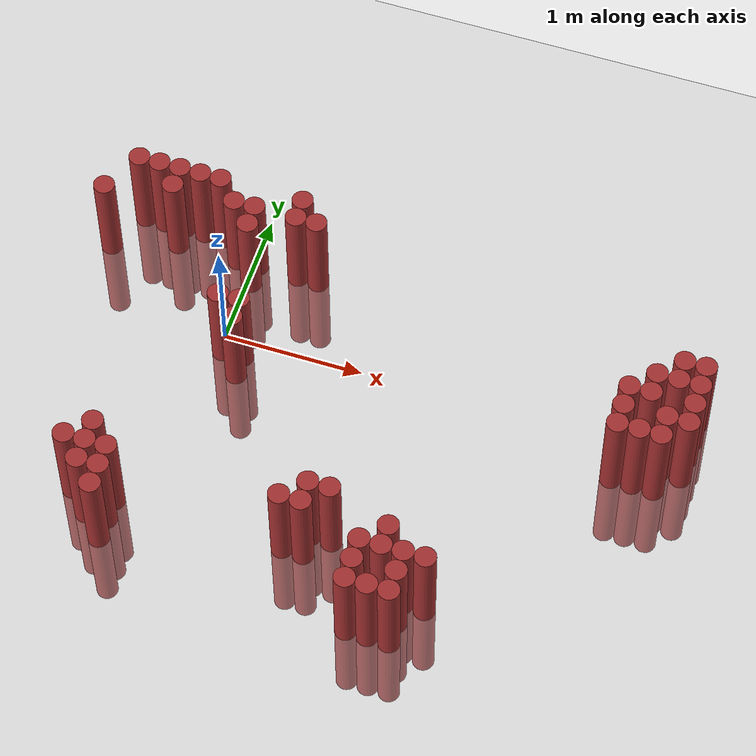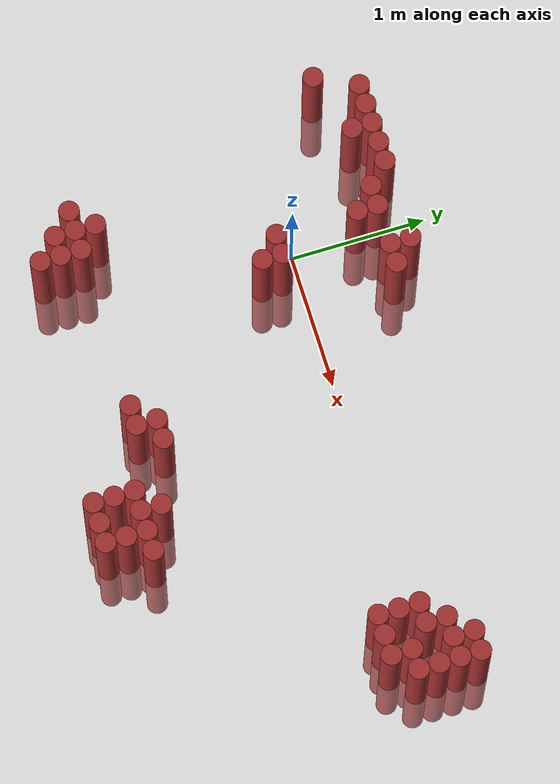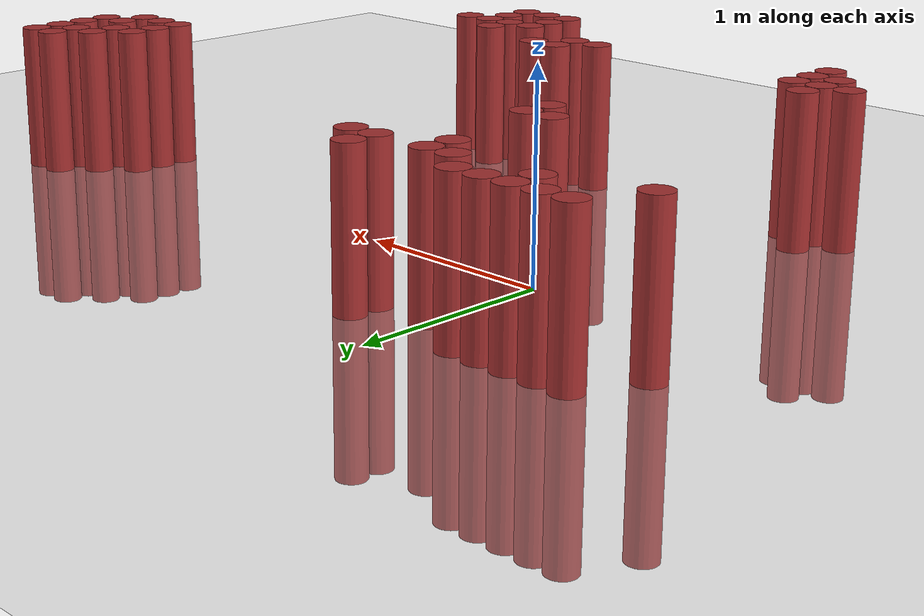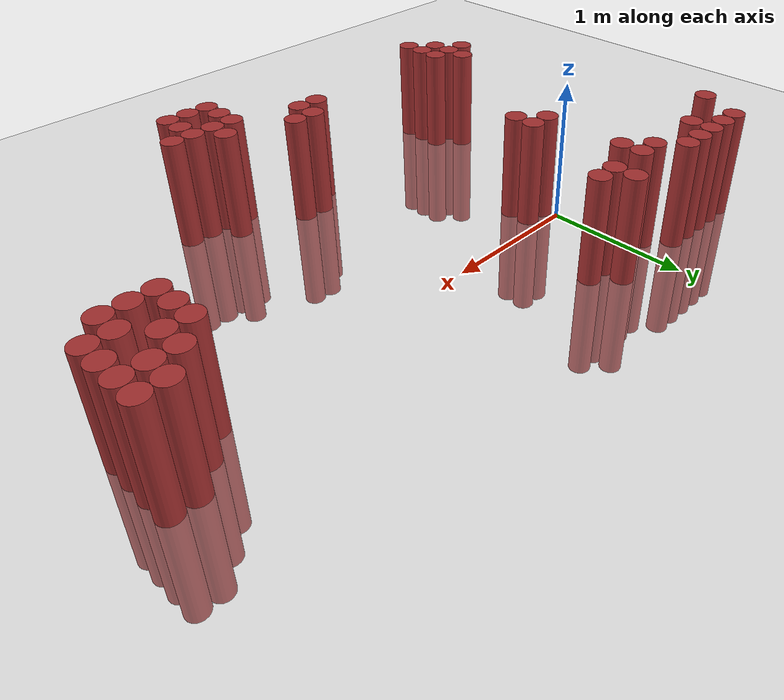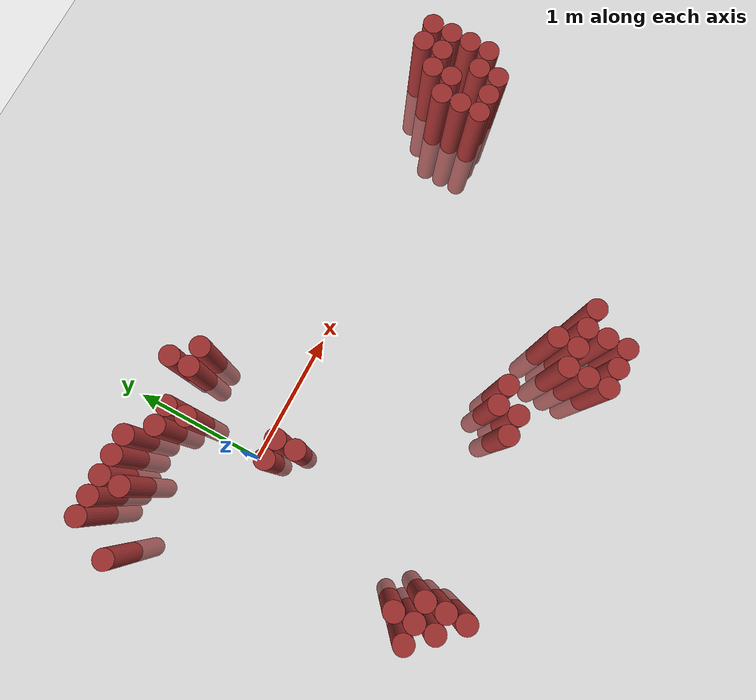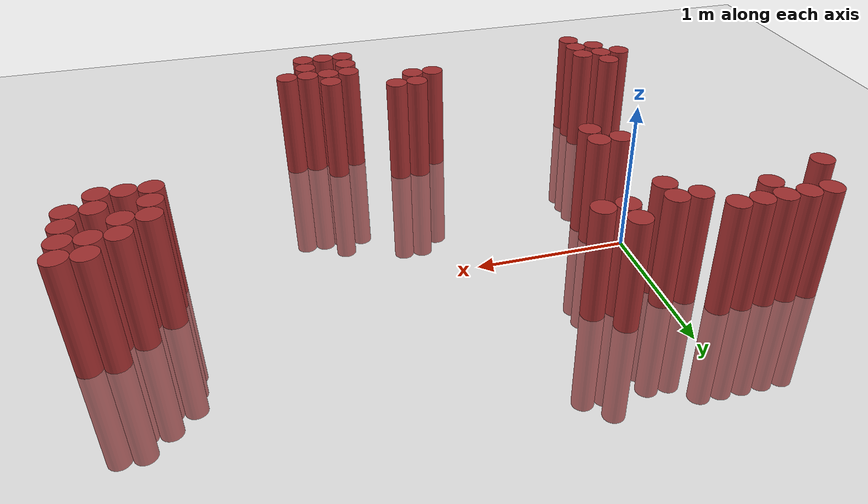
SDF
<sdf version="1.6">
 <world name="default">
  <model name="ground_plane">
   <static>1</static>
   <link name="link">
    <collision name="collision">
     <geometry><plane><normal>0 0 1</normal><size>100 100</size></plane></geometry>
     <surface><friction><ode><mu>100</mu><mu2>50</mu2></ode></friction></surface>
    </collision>
    <visual name="visual">
     <cast_shadows>0</cast_shadows>
     <geometry><plane><normal>0 0 1</normal><size>100 100</size></plane></geometry>
     <material>
      <script><uri>file://media/materials/scripts/gazebo.material</uri><name>Gazebo/Grey</name></script>
     </material>
    </visual>
   </link>
  </model>
  <model name="unit_cylinder_341">
   <static>1</static>
   <pose>-1.025000 0.475000 0.000000 0.000000 0.000000 0.000000</pose>
   <link name="link">
    <inertial>
     <mass>1</mass>
     <inertia><ixx>0.145833</ixx><ixy>0</ixy><ixz>0</ixz><iyy>0.145833</iyy><iyz>0</iyz><izz>0.125</izz></inertia>
    </inertial>
    <collision name="collision">
     <geometry><cylinder><radius>0.075000</radius><length>1.5</length></cylinder></geometry>
    </collision>
    <visual name="visual">
     <geometry><cylinder><radius>0.075000</radius><length>1.5</length></cylinder></geometry>
     <material>
      <ambient>0.648000 0.192000 0.192000 1</ambient>
      <diffuse>0.648000 0.192000 0.192000 1</diffuse>
     </material>
     <material>
      <script><name>Gazebo/Grey</name><uri>file://media/materials/scripts/gazebo.material</uri></script>
     </material>
    </visual>
   </link>
  </model>
  <model name="unit_cylinder_342">
   <static>1</static>
   <pose>-0.875000 0.775000 0.000000 0.000000 0.000000 0.000000</pose>
   <link name="link">
    <inertial>
     <mass>1</mass>
     <inertia><ixx>0.145833</ixx><ixy>0</ixy><ixz>0</ixz><iyy>0.145833</iyy><iyz>0</iyz><izz>0.125</izz></inertia>
    </inertial>
    <collision name="collision">
     <geometry><cylinder><radius>0.075000</radius><length>1.5</length></cylinder></geometry>
    </collision>
    <visual name="visual">
     <geometry><cylinder><radius>0.075000</radius><length>1.5</length></cylinder></geometry>
     <material>
      <ambient>0.648000 0.192000 0.192000 1</ambient>
      <diffuse>0.648000 0.192000 0.192000 1</diffuse>
     </material>
     <material>
      <script><name>Gazebo/Grey</name><uri>file://media/materials/scripts/gazebo.material</uri></script>
     </material>
    </visual>
   </link>
  </model>
  <model name="unit_cylinder_343">
   <static>1</static>
   <pose>-0.725000 0.775000 0.000000 0.000000 0.000000 0.000000</pose>
   <link name="link">
    <inertial>
     <mass>1</mass>
     <inertia><ixx>0.145833</ixx><ixy>0</ixy><ixz>0</ixz><iyy>0.145833</iyy><iyz>0</iyz><izz>0.125</izz></inertia>
    </inertial>
    <collision name="collision">
     <geometry><cylinder><radius>0.075000</radius><length>1.5</length></cylinder></geometry>
    </collision>
    <visual name="visual">
     <geometry><cylinder><radius>0.075000</radius><length>1.5</length></cylinder></geometry>
     <material>
      <ambient>0.648000 0.192000 0.192000 1</ambient>
      <diffuse>0.648000 0.192000 0.192000 1</diffuse>
     </material>
     <material>
      <script><name>Gazebo/Grey</name><uri>file://media/materials/scripts/gazebo.material</uri></script>
     </material>
    </visual>
   </link>
  </model>
  <model name="unit_cylinder_345">
   <static>1</static>
   <pose>-0.575000 -1.475000 0.000000 0.000000 0.000000 0.000000</pose>
   <link name="link">
    <inertial>
     <mass>1</mass>
     <inertia><ixx>0.145833</ixx><ixy>0</ixy><ixz>0</ixz><iyy>0.145833</iyy><iyz>0</iyz><izz>0.125</izz></inertia>
    </inertial>
    <collision name="collision">
     <geometry><cylinder><radius>0.075000</radius><length>1.5</length></cylinder></geometry>
    </collision>
    <visual name="visual">
     <geometry><cylinder><radius>0.075000</radius><length>1.5</length></cylinder></geometry>
     <material>
      <ambient>0.648000 0.192000 0.192000 1</ambient>
      <diffuse>0.648000 0.192000 0.192000 1</diffuse>
     </material>
     <material>
      <script><name>Gazebo/Grey</name><uri>file://media/materials/scripts/gazebo.material</uri></script>
     </material>
    </visual>
   </link>
  </model>
  <model name="unit_cylinder_346">
   <static>1</static>
   <pose>-0.575000 0.625000 0.000000 0.000000 0.000000 0.000000</pose>
   <link name="link">
    <inertial>
     <mass>1</mass>
     <inertia><ixx>0.145833</ixx><ixy>0</ixy><ixz>0</ixz><iyy>0.145833</iyy><iyz>0</iyz><izz>0.125</izz></inertia>
    </inertial>
    <collision name="collision">
     <geometry><cylinder><radius>0.075000</radius><length>1.5</length></cylinder></geometry>
    </collision>
    <visual name="visual">
     <geometry><cylinder><radius>0.075000</radius><length>1.5</length></cylinder></geometry>
     <material>
      <ambient>0.648000 0.192000 0.192000 1</ambient>
      <diffuse>0.648000 0.192000 0.192000 1</diffuse>
     </material>
     <material>
      <script><name>Gazebo/Grey</name><uri>file://media/materials/scripts/gazebo.material</uri></script>
     </material>
    </visual>
   </link>
  </model>
  <model name="unit_cylinder_347">
   <static>1</static>
   <pose>-0.575000 0.775000 0.000000 0.000000 0.000000 0.000000</pose>
   <link name="link">
    <inertial>
     <mass>1</mass>
     <inertia><ixx>0.145833</ixx><ixy>0</ixy><ixz>0</ixz><iyy>0.145833</iyy><iyz>0</iyz><izz>0.125</izz></inertia>
    </inertial>
    <collision name="collision">
     <geometry><cylinder><radius>0.075000</radius><length>1.5</length></cylinder></geometry>
    </collision>
    <visual name="visual">
     <geometry><cylinder><radius>0.075000</radius><length>1.5</length></cylinder></geometry>
     <material>
      <ambient>0.648000 0.192000 0.192000 1</ambient>
      <diffuse>0.648000 0.192000 0.192000 1</diffuse>
     </material>
     <material>
      <script><name>Gazebo/Grey</name><uri>file://media/materials/scripts/gazebo.material</uri></script>
     </material>
    </visual>
   </link>
  </model>
  <model name="unit_cylinder_350">
   <static>1</static>
   <pose>-0.425000 -1.625000 0.000000 0.000000 0.000000 0.000000</pose>
   <link name="link">
    <inertial>
     <mass>1</mass>
     <inertia><ixx>0.145833</ixx><ixy>0</ixy><ixz>0</ixz><iyy>0.145833</iyy><iyz>0</iyz><izz>0.125</izz></inertia>
    </inertial>
    <collision name="collision">
     <geometry><cylinder><radius>0.075000</radius><length>1.5</length></cylinder></geometry>
    </collision>
    <visual name="visual">
     <geometry><cylinder><radius>0.075000</radius><length>1.5</length></cylinder></geometry>
     <material>
      <ambient>0.648000 0.192000 0.192000 1</ambient>
      <diffuse>0.648000 0.192000 0.192000 1</diffuse>
     </material>
     <material>
      <script><name>Gazebo/Grey</name><uri>file://media/materials/scripts/gazebo.material</uri></script>
     </material>
    </visual>
   </link>
  </model>
  <model name="unit_cylinder_351">
   <static>1</static>
   <pose>-0.425000 -1.475000 0.000000 0.000000 0.000000 0.000000</pose>
   <link name="link">
    <inertial>
     <mass>1</mass>
     <inertia><ixx>0.145833</ixx><ixy>0</ixy><ixz>0</ixz><iyy>0.145833</iyy><iyz>0</iyz><izz>0.125</izz></inertia>
    </inertial>
    <collision name="collision">
     <geometry><cylinder><radius>0.075000</radius><length>1.5</length></cylinder></geometry>
    </collision>
    <visual name="visual">
     <geometry><cylinder><radius>0.075000</radius><length>1.5</length></cylinder></geometry>
     <material>
      <ambient>0.648000 0.192000 0.192000 1</ambient>
      <diffuse>0.648000 0.192000 0.192000 1</diffuse>
     </material>
     <material>
      <script><name>Gazebo/Grey</name><uri>file://media/materials/scripts/gazebo.material</uri></script>
     </material>
    </visual>
   </link>
  </model>
  <model name="unit_cylinder_352">
   <static>1</static>
   <pose>-0.425000 -1.325000 0.000000 0.000000 0.000000 0.000000</pose>
   <link name="link">
    <inertial>
     <mass>1</mass>
     <inertia><ixx>0.145833</ixx><ixy>0</ixy><ixz>0</ixz><iyy>0.145833</iyy><iyz>0</iyz><izz>0.125</izz></inertia>
    </inertial>
    <collision name="collision">
     <geometry><cylinder><radius>0.075000</radius><length>1.5</length></cylinder></geometry>
    </collision>
    <visual name="visual">
     <geometry><cylinder><radius>0.075000</radius><length>1.5</length></cylinder></geometry>
     <material>
      <ambient>0.648000 0.192000 0.192000 1</ambient>
      <diffuse>0.648000 0.192000 0.192000 1</diffuse>
     </material>
     <material>
      <script><name>Gazebo/Grey</name><uri>file://media/materials/scripts/gazebo.material</uri></script>
     </material>
    </visual>
   </link>
  </model>
  <model name="unit_cylinder_353">
   <static>1</static>
   <pose>-0.425000 0.775000 0.000000 0.000000 0.000000 0.000000</pose>
   <link name="link">
    <inertial>
     <mass>1</mass>
     <inertia><ixx>0.145833</ixx><ixy>0</ixy><ixz>0</ixz><iyy>0.145833</iyy><iyz>0</iyz><izz>0.125</izz></inertia>
    </inertial>
    <collision name="collision">
     <geometry><cylinder><radius>0.075000</radius><length>1.5</length></cylinder></geometry>
    </collision>
    <visual name="visual">
     <geometry><cylinder><radius>0.075000</radius><length>1.5</length></cylinder></geometry>
     <material>
      <ambient>0.648000 0.192000 0.192000 1</ambient>
      <diffuse>0.648000 0.192000 0.192000 1</diffuse>
     </material>
     <material>
      <script><name>Gazebo/Grey</name><uri>file://media/materials/scripts/gazebo.material</uri></script>
     </material>
    </visual>
   </link>
  </model>
  <model name="unit_cylinder_356">
   <static>1</static>
   <pose>-0.275000 -1.775000 0.000000 0.000000 0.000000 0.000000</pose>
   <link name="link">
    <inertial>
     <mass>1</mass>
     <inertia><ixx>0.145833</ixx><ixy>0</ixy><ixz>0</ixz><iyy>0.145833</iyy><iyz>0</iyz><izz>0.125</izz></inertia>
    </inertial>
    <collision name="collision">
     <geometry><cylinder><radius>0.075000</radius><length>1.5</length></cylinder></geometry>
    </collision>
    <visual name="visual">
     <geometry><cylinder><radius>0.075000</radius><length>1.5</length></cylinder></geometry>
     <material>
      <ambient>0.648000 0.192000 0.192000 1</ambient>
      <diffuse>0.648000 0.192000 0.192000 1</diffuse>
     </material>
     <material>
      <script><name>Gazebo/Grey</name><uri>file://media/materials/scripts/gazebo.material</uri></script>
     </material>
    </visual>
   </link>
  </model>
  <model name="unit_cylinder_357">
   <static>1</static>
   <pose>-0.275000 -1.625000 0.000000 0.000000 0.000000 0.000000</pose>
   <link name="link">
    <inertial>
     <mass>1</mass>
     <inertia><ixx>0.145833</ixx><ixy>0</ixy><ixz>0</ixz><iyy>0.145833</iyy><iyz>0</iyz><izz>0.125</izz></inertia>
    </inertial>
    <collision name="collision">
     <geometry><cylinder><radius>0.075000</radius><length>1.5</length></cylinder></geometry>
    </collision>
    <visual name="visual">
     <geometry><cylinder><radius>0.075000</radius><length>1.5</length></cylinder></geometry>
     <material>
      <ambient>0.648000 0.192000 0.192000 1</ambient>
      <diffuse>0.648000 0.192000 0.192000 1</diffuse>
     </material>
     <material>
      <script><name>Gazebo/Grey</name><uri>file://media/materials/scripts/gazebo.material</uri></script>
     </material>
    </visual>
   </link>
  </model>
  <model name="unit_cylinder_358">
   <static>1</static>
   <pose>-0.275000 -1.475000 0.000000 0.000000 0.000000 0.000000</pose>
   <link name="link">
    <inertial>
     <mass>1</mass>
     <inertia><ixx>0.145833</ixx><ixy>0</ixy><ixz>0</ixz><iyy>0.145833</iyy><iyz>0</iyz><izz>0.125</izz></inertia>
    </inertial>
    <collision name="collision">
     <geometry><cylinder><radius>0.075000</radius><length>1.5</length></cylinder></geometry>
    </collision>
    <visual name="visual">
     <geometry><cylinder><radius>0.075000</radius><length>1.5</length></cylinder></geometry>
     <material>
      <ambient>0.648000 0.192000 0.192000 1</ambient>
      <diffuse>0.648000 0.192000 0.192000 1</diffuse>
     </material>
     <material>
      <script><name>Gazebo/Grey</name><uri>file://media/materials/scripts/gazebo.material</uri></script>
     </material>
    </visual>
   </link>
  </model>
  <model name="unit_cylinder_359">
   <static>1</static>
   <pose>-0.275000 0.775000 0.000000 0.000000 0.000000 0.000000</pose>
   <link name="link">
    <inertial>
     <mass>1</mass>
     <inertia><ixx>0.145833</ixx><ixy>0</ixy><ixz>0</ixz><iyy>0.145833</iyy><iyz>0</iyz><izz>0.125</izz></inertia>
    </inertial>
    <collision name="collision">
     <geometry><cylinder><radius>0.075000</radius><length>1.5</length></cylinder></geometry>
    </collision>
    <visual name="visual">
     <geometry><cylinder><radius>0.075000</radius><length>1.5</length></cylinder></geometry>
     <material>
      <ambient>0.648000 0.192000 0.192000 1</ambient>
      <diffuse>0.648000 0.192000 0.192000 1</diffuse>
     </material>
     <material>
      <script><name>Gazebo/Grey</name><uri>file://media/materials/scripts/gazebo.material</uri></script>
     </material>
    </visual>
   </link>
  </model>
  <model name="unit_cylinder_362">
   <static>1</static>
   <pose>-0.125000 0.625000 0.000000 0.000000 0.000000 0.000000</pose>
   <link name="link">
    <inertial>
     <mass>1</mass>
     <inertia><ixx>0.145833</ixx><ixy>0</ixy><ixz>0</ixz><iyy>0.145833</iyy><iyz>0</iyz><izz>0.125</izz></inertia>
    </inertial>
    <collision name="collision">
     <geometry><cylinder><radius>0.075000</radius><length>1.5</length></cylinder></geometry>
    </collision>
    <visual name="visual">
     <geometry><cylinder><radius>0.075000</radius><length>1.5</length></cylinder></geometry>
     <material>
      <ambient>0.648000 0.192000 0.192000 1</ambient>
      <diffuse>0.648000 0.192000 0.192000 1</diffuse>
     </material>
     <material>
      <script><name>Gazebo/Grey</name><uri>file://media/materials/scripts/gazebo.material</uri></script>
     </material>
    </visual>
   </link>
  </model>
  <model name="unit_cylinder_363">
   <static>1</static>
   <pose>0.025000 -0.125000 0.000000 0.000000 0.000000 0.000000</pose>
   <link name="link">
    <inertial>
     <mass>1</mass>
     <inertia><ixx>0.145833</ixx><ixy>0</ixy><ixz>0</ixz><iyy>0.145833</iyy><iyz>0</iyz><izz>0.125</izz></inertia>
    </inertial>
    <collision name="collision">
     <geometry><cylinder><radius>0.075000</radius><length>1.5</length></cylinder></geometry>
    </collision>
    <visual name="visual">
     <geometry><cylinder><radius>0.075000</radius><length>1.5</length></cylinder></geometry>
     <material>
      <ambient>0.648000 0.192000 0.192000 1</ambient>
      <diffuse>0.648000 0.192000 0.192000 1</diffuse>
     </material>
     <material>
      <script><name>Gazebo/Grey</name><uri>file://media/materials/scripts/gazebo.material</uri></script>
     </material>
    </visual>
   </link>
  </model>
  <model name="unit_cylinder_364">
   <static>1</static>
   <pose>0.025000 0.475000 0.000000 0.000000 0.000000 0.000000</pose>
   <link name="link">
    <inertial>
     <mass>1</mass>
     <inertia><ixx>0.145833</ixx><ixy>0</ixy><ixz>0</ixz><iyy>0.145833</iyy><iyz>0</iyz><izz>0.125</izz></inertia>
    </inertial>
    <collision name="collision">
     <geometry><cylinder><radius>0.075000</radius><length>1.5</length></cylinder></geometry>
    </collision>
    <visual name="visual">
     <geometry><cylinder><radius>0.075000</radius><length>1.5</length></cylinder></geometry>
     <material>
      <ambient>0.648000 0.192000 0.192000 1</ambient>
      <diffuse>0.648000 0.192000 0.192000 1</diffuse>
     </material>
     <material>
      <script><name>Gazebo/Grey</name><uri>file://media/materials/scripts/gazebo.material</uri></script>
     </material>
    </visual>
   </link>
  </model>
  <model name="unit_cylinder_365">
   <static>1</static>
   <pose>0.025000 0.625000 0.000000 0.000000 0.000000 0.000000</pose>
   <link name="link">
    <inertial>
     <mass>1</mass>
     <inertia><ixx>0.145833</ixx><ixy>0</ixy><ixz>0</ixz><iyy>0.145833</iyy><iyz>0</iyz><izz>0.125</izz></inertia>
    </inertial>
    <collision name="collision">
     <geometry><cylinder><radius>0.075000</radius><length>1.5</length></cylinder></geometry>
    </collision>
    <visual name="visual">
     <geometry><cylinder><radius>0.075000</radius><length>1.5</length></cylinder></geometry>
     <material>
      <ambient>0.648000 0.192000 0.192000 1</ambient>
      <diffuse>0.648000 0.192000 0.192000 1</diffuse>
     </material>
     <material>
      <script><name>Gazebo/Grey</name><uri>file://media/materials/scripts/gazebo.material</uri></script>
     </material>
    </visual>
   </link>
  </model>
  <model name="unit_cylinder_368">
   <static>1</static>
   <pose>0.175000 -0.275000 0.000000 0.000000 0.000000 0.000000</pose>
   <link name="link">
    <inertial>
     <mass>1</mass>
     <inertia><ixx>0.145833</ixx><ixy>0</ixy><ixz>0</ixz><iyy>0.145833</iyy><iyz>0</iyz><izz>0.125</izz></inertia>
    </inertial>
    <collision name="collision">
     <geometry><cylinder><radius>0.075000</radius><length>1.5</length></cylinder></geometry>
    </collision>
    <visual name="visual">
     <geometry><cylinder><radius>0.075000</radius><length>1.5</length></cylinder></geometry>
     <material>
      <ambient>0.648000 0.192000 0.192000 1</ambient>
      <diffuse>0.648000 0.192000 0.192000 1</diffuse>
     </material>
     <material>
      <script><name>Gazebo/Grey</name><uri>file://media/materials/scripts/gazebo.material</uri></script>
     </material>
    </visual>
   </link>
  </model>
  <model name="unit_cylinder_369">
   <static>1</static>
   <pose>0.175000 -0.125000 0.000000 0.000000 0.000000 0.000000</pose>
   <link name="link">
    <inertial>
     <mass>1</mass>
     <inertia><ixx>0.145833</ixx><ixy>0</ixy><ixz>0</ixz><iyy>0.145833</iyy><iyz>0</iyz><izz>0.125</izz></inertia>
    </inertial>
    <collision name="collision">
     <geometry><cylinder><radius>0.075000</radius><length>1.5</length></cylinder></geometry>
    </collision>
    <visual name="visual">
     <geometry><cylinder><radius>0.075000</radius><length>1.5</length></cylinder></geometry>
     <material>
      <ambient>0.648000 0.192000 0.192000 1</ambient>
      <diffuse>0.648000 0.192000 0.192000 1</diffuse>
     </material>
     <material>
      <script><name>Gazebo/Grey</name><uri>file://media/materials/scripts/gazebo.material</uri></script>
     </material>
    </visual>
   </link>
  </model>
  <model name="unit_cylinder_371">
   <static>1</static>
   <pose>0.325000 0.625000 0.000000 0.000000 0.000000 0.000000</pose>
   <link name="link">
    <inertial>
     <mass>1</mass>
     <inertia><ixx>0.145833</ixx><ixy>0</ixy><ixz>0</ixz><iyy>0.145833</iyy><iyz>0</iyz><izz>0.125</izz></inertia>
    </inertial>
    <collision name="collision">
     <geometry><cylinder><radius>0.075000</radius><length>1.5</length></cylinder></geometry>
    </collision>
    <visual name="visual">
     <geometry><cylinder><radius>0.075000</radius><length>1.5</length></cylinder></geometry>
     <material>
      <ambient>0.648000 0.192000 0.192000 1</ambient>
      <diffuse>0.648000 0.192000 0.192000 1</diffuse>
     </material>
     <material>
      <script><name>Gazebo/Grey</name><uri>file://media/materials/scripts/gazebo.material</uri></script>
     </material>
    </visual>
   </link>
  </model>
  <model name="unit_cylinder_372">
   <static>1</static>
   <pose>0.325000 0.775000 0.000000 0.000000 0.000000 0.000000</pose>
   <link name="link">
    <inertial>
     <mass>1</mass>
     <inertia><ixx>0.145833</ixx><ixy>0</ixy><ixz>0</ixz><iyy>0.145833</iyy><iyz>0</iyz><izz>0.125</izz></inertia>
    </inertial>
    <collision name="collision">
     <geometry><cylinder><radius>0.075000</radius><length>1.5</length></cylinder></geometry>
    </collision>
    <visual name="visual">
     <geometry><cylinder><radius>0.075000</radius><length>1.5</length></cylinder></geometry>
     <material>
      <ambient>0.648000 0.192000 0.192000 1</ambient>
      <diffuse>0.648000 0.192000 0.192000 1</diffuse>
     </material>
     <material>
      <script><name>Gazebo/Grey</name><uri>file://media/materials/scripts/gazebo.material</uri></script>
     </material>
    </visual>
   </link>
  </model>
  <model name="unit_cylinder_374">
   <static>1</static>
   <pose>0.475000 0.625000 0.000000 0.000000 0.000000 0.000000</pose>
   <link name="link">
    <inertial>
     <mass>1</mass>
     <inertia><ixx>0.145833</ixx><ixy>0</ixy><ixz>0</ixz><iyy>0.145833</iyy><iyz>0</iyz><izz>0.125</izz></inertia>
    </inertial>
    <collision name="collision">
     <geometry><cylinder><radius>0.075000</radius><length>1.5</length></cylinder></geometry>
    </collision>
    <visual name="visual">
     <geometry><cylinder><radius>0.075000</radius><length>1.5</length></cylinder></geometry>
     <material>
      <ambient>0.648000 0.192000 0.192000 1</ambient>
      <diffuse>0.648000 0.192000 0.192000 1</diffuse>
     </material>
     <material>
      <script><name>Gazebo/Grey</name><uri>file://media/materials/scripts/gazebo.material</uri></script>
     </material>
    </visual>
   </link>
  </model>
  <model name="unit_cylinder_378">
   <static>1</static>
   <pose>0.925000 -1.475000 0.000000 0.000000 0.000000 0.000000</pose>
   <link name="link">
    <inertial>
     <mass>1</mass>
     <inertia><ixx>0.145833</ixx><ixy>0</ixy><ixz>0</ixz><iyy>0.145833</iyy><iyz>0</iyz><izz>0.125</izz></inertia>
    </inertial>
    <collision name="collision">
     <geometry><cylinder><radius>0.075000</radius><length>1.5</length></cylinder></geometry>
    </collision>
    <visual name="visual">
     <geometry><cylinder><radius>0.075000</radius><length>1.5</length></cylinder></geometry>
     <material>
      <ambient>0.648000 0.192000 0.192000 1</ambient>
      <diffuse>0.648000 0.192000 0.192000 1</diffuse>
     </material>
     <material>
      <script><name>Gazebo/Grey</name><uri>file://media/materials/scripts/gazebo.material</uri></script>
     </material>
    </visual>
   </link>
  </model>
  <model name="unit_cylinder_379">
   <static>1</static>
   <pose>1.075000 -1.475000 0.000000 0.000000 0.000000 0.000000</pose>
   <link name="link">
    <inertial>
     <mass>1</mass>
     <inertia><ixx>0.145833</ixx><ixy>0</ixy><ixz>0</ixz><iyy>0.145833</iyy><iyz>0</iyz><izz>0.125</izz></inertia>
    </inertial>
    <collision name="collision">
     <geometry><cylinder><radius>0.075000</radius><length>1.5</length></cylinder></geometry>
    </collision>
    <visual name="visual">
     <geometry><cylinder><radius>0.075000</radius><length>1.5</length></cylinder></geometry>
     <material>
      <ambient>0.648000 0.192000 0.192000 1</ambient>
      <diffuse>0.648000 0.192000 0.192000 1</diffuse>
     </material>
     <material>
      <script><name>Gazebo/Grey</name><uri>file://media/materials/scripts/gazebo.material</uri></script>
     </material>
    </visual>
   </link>
  </model>
  <model name="unit_cylinder_380">
   <static>1</static>
   <pose>1.075000 -1.325000 0.000000 0.000000 0.000000 0.000000</pose>
   <link name="link">
    <inertial>
     <mass>1</mass>
     <inertia><ixx>0.145833</ixx><ixy>0</ixy><ixz>0</ixz><iyy>0.145833</iyy><iyz>0</iyz><izz>0.125</izz></inertia>
    </inertial>
    <collision name="collision">
     <geometry><cylinder><radius>0.075000</radius><length>1.5</length></cylinder></geometry>
    </collision>
    <visual name="visual">
     <geometry><cylinder><radius>0.075000</radius><length>1.5</length></cylinder></geometry>
     <material>
      <ambient>0.648000 0.192000 0.192000 1</ambient>
      <diffuse>0.648000 0.192000 0.192000 1</diffuse>
     </material>
     <material>
      <script><name>Gazebo/Grey</name><uri>file://media/materials/scripts/gazebo.material</uri></script>
     </material>
    </visual>
   </link>
  </model>
  <model name="unit_cylinder_381">
   <static>1</static>
   <pose>1.225000 -1.325000 0.000000 0.000000 0.000000 0.000000</pose>
   <link name="link">
    <inertial>
     <mass>1</mass>
     <inertia><ixx>0.145833</ixx><ixy>0</ixy><ixz>0</ixz><iyy>0.145833</iyy><iyz>0</iyz><izz>0.125</izz></inertia>
    </inertial>
    <collision name="collision">
     <geometry><cylinder><radius>0.075000</radius><length>1.5</length></cylinder></geometry>
    </collision>
    <visual name="visual">
     <geometry><cylinder><radius>0.075000</radius><length>1.5</length></cylinder></geometry>
     <material>
      <ambient>0.648000 0.192000 0.192000 1</ambient>
      <diffuse>0.648000 0.192000 0.192000 1</diffuse>
     </material>
     <material>
      <script><name>Gazebo/Grey</name><uri>file://media/materials/scripts/gazebo.material</uri></script>
     </material>
    </visual>
   </link>
  </model>
  <model name="unit_cylinder_384">
   <static>1</static>
   <pose>1.525000 -1.925000 0.000000 0.000000 0.000000 0.000000</pose>
   <link name="link">
    <inertial>
     <mass>1</mass>
     <inertia><ixx>0.145833</ixx><ixy>0</ixy><ixz>0</ixz><iyy>0.145833</iyy><iyz>0</iyz><izz>0.125</izz></inertia>
    </inertial>
    <collision name="collision">
     <geometry><cylinder><radius>0.075000</radius><length>1.5</length></cylinder></geometry>
    </collision>
    <visual name="visual">
     <geometry><cylinder><radius>0.075000</radius><length>1.5</length></cylinder></geometry>
     <material>
      <ambient>0.648000 0.192000 0.192000 1</ambient>
      <diffuse>0.648000 0.192000 0.192000 1</diffuse>
     </material>
     <material>
      <script><name>Gazebo/Grey</name><uri>file://media/materials/scripts/gazebo.material</uri></script>
     </material>
    </visual>
   </link>
  </model>
  <model name="unit_cylinder_385">
   <static>1</static>
   <pose>1.525000 -1.775000 0.000000 0.000000 0.000000 0.000000</pose>
   <link name="link">
    <inertial>
     <mass>1</mass>
     <inertia><ixx>0.145833</ixx><ixy>0</ixy><ixz>0</ixz><iyy>0.145833</iyy><iyz>0</iyz><izz>0.125</izz></inertia>
    </inertial>
    <collision name="collision">
     <geometry><cylinder><radius>0.075000</radius><length>1.5</length></cylinder></geometry>
    </collision>
    <visual name="visual">
     <geometry><cylinder><radius>0.075000</radius><length>1.5</length></cylinder></geometry>
     <material>
      <ambient>0.648000 0.192000 0.192000 1</ambient>
      <diffuse>0.648000 0.192000 0.192000 1</diffuse>
     </material>
     <material>
      <script><name>Gazebo/Grey</name><uri>file://media/materials/scripts/gazebo.material</uri></script>
     </material>
    </visual>
   </link>
  </model>
  <model name="unit_cylinder_386">
   <static>1</static>
   <pose>1.525000 -1.625000 0.000000 0.000000 0.000000 0.000000</pose>
   <link name="link">
    <inertial>
     <mass>1</mass>
     <inertia><ixx>0.145833</ixx><ixy>0</ixy><ixz>0</ixz><iyy>0.145833</iyy><iyz>0</iyz><izz>0.125</izz></inertia>
    </inertial>
    <collision name="collision">
     <geometry><cylinder><radius>0.075000</radius><length>1.5</length></cylinder></geometry>
    </collision>
    <visual name="visual">
     <geometry><cylinder><radius>0.075000</radius><length>1.5</length></cylinder></geometry>
     <material>
      <ambient>0.648000 0.192000 0.192000 1</ambient>
      <diffuse>0.648000 0.192000 0.192000 1</diffuse>
     </material>
     <material>
      <script><name>Gazebo/Grey</name><uri>file://media/materials/scripts/gazebo.material</uri></script>
     </material>
    </visual>
   </link>
  </model>
  <model name="unit_cylinder_391">
   <static>1</static>
   <pose>1.675000 -1.925000 0.000000 0.000000 0.000000 0.000000</pose>
   <link name="link">
    <inertial>
     <mass>1</mass>
     <inertia><ixx>0.145833</ixx><ixy>0</ixy><ixz>0</ixz><iyy>0.145833</iyy><iyz>0</iyz><izz>0.125</izz></inertia>
    </inertial>
    <collision name="collision">
     <geometry><cylinder><radius>0.075000</radius><length>1.5</length></cylinder></geometry>
    </collision>
    <visual name="visual">
     <geometry><cylinder><radius>0.075000</radius><length>1.5</length></cylinder></geometry>
     <material>
      <ambient>0.648000 0.192000 0.192000 1</ambient>
      <diffuse>0.648000 0.192000 0.192000 1</diffuse>
     </material>
     <material>
      <script><name>Gazebo/Grey</name><uri>file://media/materials/scripts/gazebo.material</uri></script>
     </material>
    </visual>
   </link>
  </model>
  <model name="unit_cylinder_392">
   <static>1</static>
   <pose>1.675000 -1.625000 0.000000 0.000000 0.000000 0.000000</pose>
   <link name="link">
    <inertial>
     <mass>1</mass>
     <inertia><ixx>0.145833</ixx><ixy>0</ixy><ixz>0</ixz><iyy>0.145833</iyy><iyz>0</iyz><izz>0.125</izz></inertia>
    </inertial>
    <collision name="collision">
     <geometry><cylinder><radius>0.075000</radius><length>1.5</length></cylinder></geometry>
    </collision>
    <visual name="visual">
     <geometry><cylinder><radius>0.075000</radius><length>1.5</length></cylinder></geometry>
     <material>
      <ambient>0.648000 0.192000 0.192000 1</ambient>
      <diffuse>0.648000 0.192000 0.192000 1</diffuse>
     </material>
     <material>
      <script><name>Gazebo/Grey</name><uri>file://media/materials/scripts/gazebo.material</uri></script>
     </material>
    </visual>
   </link>
  </model>
  <model name="unit_cylinder_393">
   <static>1</static>
   <pose>1.675000 -1.475000 0.000000 0.000000 0.000000 0.000000</pose>
   <link name="link">
    <inertial>
     <mass>1</mass>
     <inertia><ixx>0.145833</ixx><ixy>0</ixy><ixz>0</ixz><iyy>0.145833</iyy><iyz>0</iyz><izz>0.125</izz></inertia>
    </inertial>
    <collision name="collision">
     <geometry><cylinder><radius>0.075000</radius><length>1.5</length></cylinder></geometry>
    </collision>
    <visual name="visual">
     <geometry><cylinder><radius>0.075000</radius><length>1.5</length></cylinder></geometry>
     <material>
      <ambient>0.648000 0.192000 0.192000 1</ambient>
      <diffuse>0.648000 0.192000 0.192000 1</diffuse>
     </material>
     <material>
      <script><name>Gazebo/Grey</name><uri>file://media/materials/scripts/gazebo.material</uri></script>
     </material>
    </visual>
   </link>
  </model>
  <model name="unit_cylinder_397">
   <static>1</static>
   <pose>1.825000 -1.925000 0.000000 0.000000 0.000000 0.000000</pose>
   <link name="link">
    <inertial>
     <mass>1</mass>
     <inertia><ixx>0.145833</ixx><ixy>0</ixy><ixz>0</ixz><iyy>0.145833</iyy><iyz>0</iyz><izz>0.125</izz></inertia>
    </inertial>
    <collision name="collision">
     <geometry><cylinder><radius>0.075000</radius><length>1.5</length></cylinder></geometry>
    </collision>
    <visual name="visual">
     <geometry><cylinder><radius>0.075000</radius><length>1.5</length></cylinder></geometry>
     <material>
      <ambient>0.648000 0.192000 0.192000 1</ambient>
      <diffuse>0.648000 0.192000 0.192000 1</diffuse>
     </material>
     <material>
      <script><name>Gazebo/Grey</name><uri>file://media/materials/scripts/gazebo.material</uri></script>
     </material>
    </visual>
   </link>
  </model>
  <model name="unit_cylinder_398">
   <static>1</static>
   <pose>1.825000 -1.775000 0.000000 0.000000 0.000000 0.000000</pose>
   <link name="link">
    <inertial>
     <mass>1</mass>
     <inertia><ixx>0.145833</ixx><ixy>0</ixy><ixz>0</ixz><iyy>0.145833</iyy><iyz>0</iyz><izz>0.125</izz></inertia>
    </inertial>
    <collision name="collision">
     <geometry><cylinder><radius>0.075000</radius><length>1.5</length></cylinder></geometry>
    </collision>
    <visual name="visual">
     <geometry><cylinder><radius>0.075000</radius><length>1.5</length></cylinder></geometry>
     <material>
      <ambient>0.648000 0.192000 0.192000 1</ambient>
      <diffuse>0.648000 0.192000 0.192000 1</diffuse>
     </material>
     <material>
      <script><name>Gazebo/Grey</name><uri>file://media/materials/scripts/gazebo.material</uri></script>
     </material>
    </visual>
   </link>
  </model>
  <model name="unit_cylinder_399">
   <static>1</static>
   <pose>1.825000 -1.625000 0.000000 0.000000 0.000000 0.000000</pose>
   <link name="link">
    <inertial>
     <mass>1</mass>
     <inertia><ixx>0.145833</ixx><ixy>0</ixy><ixz>0</ixz><iyy>0.145833</iyy><iyz>0</iyz><izz>0.125</izz></inertia>
    </inertial>
    <collision name="collision">
     <geometry><cylinder><radius>0.075000</radius><length>1.5</length></cylinder></geometry>
    </collision>
    <visual name="visual">
     <geometry><cylinder><radius>0.075000</radius><length>1.5</length></cylinder></geometry>
     <material>
      <ambient>0.648000 0.192000 0.192000 1</ambient>
      <diffuse>0.648000 0.192000 0.192000 1</diffuse>
     </material>
     <material>
      <script><name>Gazebo/Grey</name><uri>file://media/materials/scripts/gazebo.material</uri></script>
     </material>
    </visual>
   </link>
  </model>
  <model name="unit_cylinder_403">
   <static>1</static>
   <pose>1.975000 -1.625000 0.000000 0.000000 0.000000 0.000000</pose>
   <link name="link">
    <inertial>
     <mass>1</mass>
     <inertia><ixx>0.145833</ixx><ixy>0</ixy><ixz>0</ixz><iyy>0.145833</iyy><iyz>0</iyz><izz>0.125</izz></inertia>
    </inertial>
    <collision name="collision">
     <geometry><cylinder><radius>0.075000</radius><length>1.5</length></cylinder></geometry>
    </collision>
    <visual name="visual">
     <geometry><cylinder><radius>0.075000</radius><length>1.5</length></cylinder></geometry>
     <material>
      <ambient>0.648000 0.192000 0.192000 1</ambient>
      <diffuse>0.648000 0.192000 0.192000 1</diffuse>
     </material>
     <material>
      <script><name>Gazebo/Grey</name><uri>file://media/materials/scripts/gazebo.material</uri></script>
     </material>
    </visual>
   </link>
  </model>
  <model name="unit_cylinder_416">
   <static>1</static>
   <pose>2.875000 -0.275000 0.000000 0.000000 0.000000 0.000000</pose>
   <link name="link">
    <inertial>
     <mass>1</mass>
     <inertia><ixx>0.145833</ixx><ixy>0</ixy><ixz>0</ixz><iyy>0.145833</iyy><iyz>0</iyz><izz>0.125</izz></inertia>
    </inertial>
    <collision name="collision">
     <geometry><cylinder><radius>0.075000</radius><length>1.5</length></cylinder></geometry>
    </collision>
    <visual name="visual">
     <geometry><cylinder><radius>0.075000</radius><length>1.5</length></cylinder></geometry>
     <material>
      <ambient>0.648000 0.192000 0.192000 1</ambient>
      <diffuse>0.648000 0.192000 0.192000 1</diffuse>
     </material>
     <material>
      <script><name>Gazebo/Grey</name><uri>file://media/materials/scripts/gazebo.material</uri></script>
     </material>
    </visual>
   </link>
  </model>
  <model name="unit_cylinder_417">
   <static>1</static>
   <pose>2.875000 -0.125000 0.000000 0.000000 0.000000 0.000000</pose>
   <link name="link">
    <inertial>
     <mass>1</mass>
     <inertia><ixx>0.145833</ixx><ixy>0</ixy><ixz>0</ixz><iyy>0.145833</iyy><iyz>0</iyz><izz>0.125</izz></inertia>
    </inertial>
    <collision name="collision">
     <geometry><cylinder><radius>0.075000</radius><length>1.5</length></cylinder></geometry>
    </collision>
    <visual name="visual">
     <geometry><cylinder><radius>0.075000</radius><length>1.5</length></cylinder></geometry>
     <material>
      <ambient>0.648000 0.192000 0.192000 1</ambient>
      <diffuse>0.648000 0.192000 0.192000 1</diffuse>
     </material>
     <material>
      <script><name>Gazebo/Grey</name><uri>file://media/materials/scripts/gazebo.material</uri></script>
     </material>
    </visual>
   </link>
  </model>
  <model name="unit_cylinder_418">
   <static>1</static>
   <pose>2.875000 0.025000 0.000000 0.000000 0.000000 0.000000</pose>
   <link name="link">
    <inertial>
     <mass>1</mass>
     <inertia><ixx>0.145833</ixx><ixy>0</ixy><ixz>0</ixz><iyy>0.145833</iyy><iyz>0</iyz><izz>0.125</izz></inertia>
    </inertial>
    <collision name="collision">
     <geometry><cylinder><radius>0.075000</radius><length>1.5</length></cylinder></geometry>
    </collision>
    <visual name="visual">
     <geometry><cylinder><radius>0.075000</radius><length>1.5</length></cylinder></geometry>
     <material>
      <ambient>0.648000 0.192000 0.192000 1</ambient>
      <diffuse>0.648000 0.192000 0.192000 1</diffuse>
     </material>
     <material>
      <script><name>Gazebo/Grey</name><uri>file://media/materials/scripts/gazebo.material</uri></script>
     </material>
    </visual>
   </link>
  </model>
  <model name="unit_cylinder_420">
   <static>1</static>
   <pose>3.025000 -0.275000 0.000000 0.000000 0.000000 0.000000</pose>
   <link name="link">
    <inertial>
     <mass>1</mass>
     <inertia><ixx>0.145833</ixx><ixy>0</ixy><ixz>0</ixz><iyy>0.145833</iyy><iyz>0</iyz><izz>0.125</izz></inertia>
    </inertial>
    <collision name="collision">
     <geometry><cylinder><radius>0.075000</radius><length>1.5</length></cylinder></geometry>
    </collision>
    <visual name="visual">
     <geometry><cylinder><radius>0.075000</radius><length>1.5</length></cylinder></geometry>
     <material>
      <ambient>0.648000 0.192000 0.192000 1</ambient>
      <diffuse>0.648000 0.192000 0.192000 1</diffuse>
     </material>
     <material>
      <script><name>Gazebo/Grey</name><uri>file://media/materials/scripts/gazebo.material</uri></script>
     </material>
    </visual>
   </link>
  </model>
  <model name="unit_cylinder_421">
   <static>1</static>
   <pose>3.025000 0.025000 0.000000 0.000000 0.000000 0.000000</pose>
   <link name="link">
    <inertial>
     <mass>1</mass>
     <inertia><ixx>0.145833</ixx><ixy>0</ixy><ixz>0</ixz><iyy>0.145833</iyy><iyz>0</iyz><izz>0.125</izz></inertia>
    </inertial>
    <collision name="collision">
     <geometry><cylinder><radius>0.075000</radius><length>1.5</length></cylinder></geometry>
    </collision>
    <visual name="visual">
     <geometry><cylinder><radius>0.075000</radius><length>1.5</length></cylinder></geometry>
     <material>
      <ambient>0.648000 0.192000 0.192000 1</ambient>
      <diffuse>0.648000 0.192000 0.192000 1</diffuse>
     </material>
     <material>
      <script><name>Gazebo/Grey</name><uri>file://media/materials/scripts/gazebo.material</uri></script>
     </material>
    </visual>
   </link>
  </model>
  <model name="unit_cylinder_422">
   <static>1</static>
   <pose>3.025000 0.175000 0.000000 0.000000 0.000000 0.000000</pose>
   <link name="link">
    <inertial>
     <mass>1</mass>
     <inertia><ixx>0.145833</ixx><ixy>0</ixy><ixz>0</ixz><iyy>0.145833</iyy><iyz>0</iyz><izz>0.125</izz></inertia>
    </inertial>
    <collision name="collision">
     <geometry><cylinder><radius>0.075000</radius><length>1.5</length></cylinder></geometry>
    </collision>
    <visual name="visual">
     <geometry><cylinder><radius>0.075000</radius><length>1.5</length></cylinder></geometry>
     <material>
      <ambient>0.648000 0.192000 0.192000 1</ambient>
      <diffuse>0.648000 0.192000 0.192000 1</diffuse>
     </material>
     <material>
      <script><name>Gazebo/Grey</name><uri>file://media/materials/scripts/gazebo.material</uri></script>
     </material>
    </visual>
   </link>
  </model>
  <model name="unit_cylinder_423">
   <static>1</static>
   <pose>3.175000 -0.275000 0.000000 0.000000 0.000000 0.000000</pose>
   <link name="link">
    <inertial>
     <mass>1</mass>
     <inertia><ixx>0.145833</ixx><ixy>0</ixy><ixz>0</ixz><iyy>0.145833</iyy><iyz>0</iyz><izz>0.125</izz></inertia>
    </inertial>
    <collision name="collision">
     <geometry><cylinder><radius>0.075000</radius><length>1.5</length></cylinder></geometry>
    </collision>
    <visual name="visual">
     <geometry><cylinder><radius>0.075000</radius><length>1.5</length></cylinder></geometry>
     <material>
      <ambient>0.648000 0.192000 0.192000 1</ambient>
      <diffuse>0.648000 0.192000 0.192000 1</diffuse>
     </material>
     <material>
      <script><name>Gazebo/Grey</name><uri>file://media/materials/scripts/gazebo.material</uri></script>
     </material>
    </visual>
   </link>
  </model>
  <model name="unit_cylinder_424">
   <static>1</static>
   <pose>3.175000 -0.125000 0.000000 0.000000 0.000000 0.000000</pose>
   <link name="link">
    <inertial>
     <mass>1</mass>
     <inertia><ixx>0.145833</ixx><ixy>0</ixy><ixz>0</ixz><iyy>0.145833</iyy><iyz>0</iyz><izz>0.125</izz></inertia>
    </inertial>
    <collision name="collision">
     <geometry><cylinder><radius>0.075000</radius><length>1.5</length></cylinder></geometry>
    </collision>
    <visual name="visual">
     <geometry><cylinder><radius>0.075000</radius><length>1.5</length></cylinder></geometry>
     <material>
      <ambient>0.648000 0.192000 0.192000 1</ambient>
      <diffuse>0.648000 0.192000 0.192000 1</diffuse>
     </material>
     <material>
      <script><name>Gazebo/Grey</name><uri>file://media/materials/scripts/gazebo.material</uri></script>
     </material>
    </visual>
   </link>
  </model>
  <model name="unit_cylinder_425">
   <static>1</static>
   <pose>3.175000 0.175000 0.000000 0.000000 0.000000 0.000000</pose>
   <link name="link">
    <inertial>
     <mass>1</mass>
     <inertia><ixx>0.145833</ixx><ixy>0</ixy><ixz>0</ixz><iyy>0.145833</iyy><iyz>0</iyz><izz>0.125</izz></inertia>
    </inertial>
    <collision name="collision">
     <geometry><cylinder><radius>0.075000</radius><length>1.5</length></cylinder></geometry>
    </collision>
    <visual name="visual">
     <geometry><cylinder><radius>0.075000</radius><length>1.5</length></cylinder></geometry>
     <material>
      <ambient>0.648000 0.192000 0.192000 1</ambient>
      <diffuse>0.648000 0.192000 0.192000 1</diffuse>
     </material>
     <material>
      <script><name>Gazebo/Grey</name><uri>file://media/materials/scripts/gazebo.material</uri></script>
     </material>
    </visual>
   </link>
  </model>
  <model name="unit_cylinder_426">
   <static>1</static>
   <pose>3.175000 0.325000 0.000000 0.000000 0.000000 0.000000</pose>
   <link name="link">
    <inertial>
     <mass>1</mass>
     <inertia><ixx>0.145833</ixx><ixy>0</ixy><ixz>0</ixz><iyy>0.145833</iyy><iyz>0</iyz><izz>0.125</izz></inertia>
    </inertial>
    <collision name="collision">
     <geometry><cylinder><radius>0.075000</radius><length>1.5</length></cylinder></geometry>
    </collision>
    <visual name="visual">
     <geometry><cylinder><radius>0.075000</radius><length>1.5</length></cylinder></geometry>
     <material>
      <ambient>0.648000 0.192000 0.192000 1</ambient>
      <diffuse>0.648000 0.192000 0.192000 1</diffuse>
     </material>
     <material>
      <script><name>Gazebo/Grey</name><uri>file://media/materials/scripts/gazebo.material</uri></script>
     </material>
    </visual>
   </link>
  </model>
  <model name="unit_cylinder_427">
   <static>1</static>
   <pose>3.325000 -0.125000 0.000000 0.000000 0.000000 0.000000</pose>
   <link name="link">
    <inertial>
     <mass>1</mass>
     <inertia><ixx>0.145833</ixx><ixy>0</ixy><ixz>0</ixz><iyy>0.145833</iyy><iyz>0</iyz><izz>0.125</izz></inertia>
    </inertial>
    <collision name="collision">
     <geometry><cylinder><radius>0.075000</radius><length>1.5</length></cylinder></geometry>
    </collision>
    <visual name="visual">
     <geometry><cylinder><radius>0.075000</radius><length>1.5</length></cylinder></geometry>
     <material>
      <ambient>0.648000 0.192000 0.192000 1</ambient>
      <diffuse>0.648000 0.192000 0.192000 1</diffuse>
     </material>
     <material>
      <script><name>Gazebo/Grey</name><uri>file://media/materials/scripts/gazebo.material</uri></script>
     </material>
    </visual>
   </link>
  </model>
  <model name="unit_cylinder_428">
   <static>1</static>
   <pose>3.325000 0.025000 0.000000 0.000000 0.000000 0.000000</pose>
   <link name="link">
    <inertial>
     <mass>1</mass>
     <inertia><ixx>0.145833</ixx><ixy>0</ixy><ixz>0</ixz><iyy>0.145833</iyy><iyz>0</iyz><izz>0.125</izz></inertia>
    </inertial>
    <collision name="collision">
     <geometry><cylinder><radius>0.075000</radius><length>1.5</length></cylinder></geometry>
    </collision>
    <visual name="visual">
     <geometry><cylinder><radius>0.075000</radius><length>1.5</length></cylinder></geometry>
     <material>
      <ambient>0.648000 0.192000 0.192000 1</ambient>
      <diffuse>0.648000 0.192000 0.192000 1</diffuse>
     </material>
     <material>
      <script><name>Gazebo/Grey</name><uri>file://media/materials/scripts/gazebo.material</uri></script>
     </material>
    </visual>
   </link>
  </model>
  <model name="unit_cylinder_429">
   <static>1</static>
   <pose>3.325000 0.175000 0.000000 0.000000 0.000000 0.000000</pose>
   <link name="link">
    <inertial>
     <mass>1</mass>
     <inertia><ixx>0.145833</ixx><ixy>0</ixy><ixz>0</ixz><iyy>0.145833</iyy><iyz>0</iyz><izz>0.125</izz></inertia>
    </inertial>
    <collision name="collision">
     <geometry><cylinder><radius>0.075000</radius><length>1.5</length></cylinder></geometry>
    </collision>
    <visual name="visual">
     <geometry><cylinder><radius>0.075000</radius><length>1.5</length></cylinder></geometry>
     <material>
      <ambient>0.648000 0.192000 0.192000 1</ambient>
      <diffuse>0.648000 0.192000 0.192000 1</diffuse>
     </material>
     <material>
      <script><name>Gazebo/Grey</name><uri>file://media/materials/scripts/gazebo.material</uri></script>
     </material>
    </visual>
   </link>
  </model>
  <model name="unit_cylinder_430">
   <static>1</static>
   <pose>3.325000 0.325000 0.000000 0.000000 0.000000 0.000000</pose>
   <link name="link">
    <inertial>
     <mass>1</mass>
     <inertia><ixx>0.145833</ixx><ixy>0</ixy><ixz>0</ixz><iyy>0.145833</iyy><iyz>0</iyz><izz>0.125</izz></inertia>
    </inertial>
    <collision name="collision">
     <geometry><cylinder><radius>0.075000</radius><length>1.5</length></cylinder></geometry>
    </collision>
    <visual name="visual">
     <geometry><cylinder><radius>0.075000</radius><length>1.5</length></cylinder></geometry>
     <material>
      <ambient>0.648000 0.192000 0.192000 1</ambient>
      <diffuse>0.648000 0.192000 0.192000 1</diffuse>
     </material>
     <material>
      <script><name>Gazebo/Grey</name><uri>file://media/materials/scripts/gazebo.material</uri></script>
     </material>
    </visual>
   </link>
  </model>
 </world>
</sdf>
